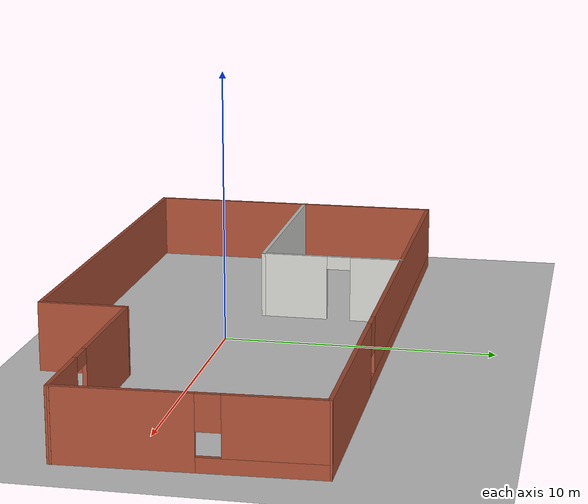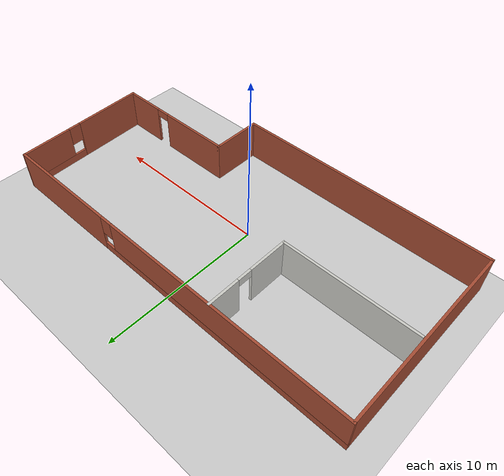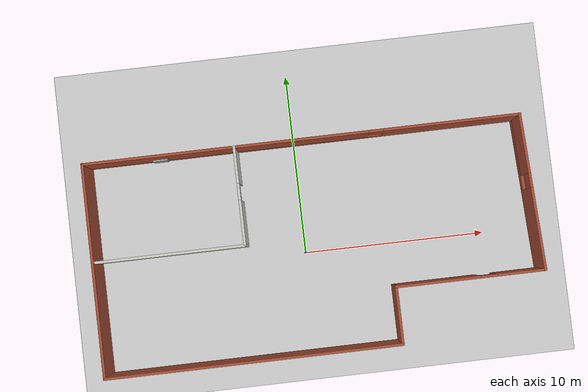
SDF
<sdf version="1.7">
 <world name="default">
  <light name="sun" type="directional">
   <pose>0 0 10 0 -0 0</pose>
   <diffuse>0.8 0.8 0.8 1</diffuse>
   <specular>0.2 0.2 0.2 1</specular>
   <attenuation>
    <range>1000</range>
    <constant>0.9</constant>
    <linear>0.01</linear>
    <quadratic>0.001</quadratic>
   </attenuation>
   <direction>-0.5 0.1 -0.9</direction>
   <spot><inner_angle>0</inner_angle><outer_angle>0</outer_angle><falloff>0</falloff></spot>
  </light>
  <model name="ground_plane">
   <static>1</static>
   <link name="link">
    <collision name="collision">
     <geometry><plane><normal>0 0 1</normal><size>100 100</size></plane></geometry>
     <surface>
      <contact><collide_bitmask>65535</collide_bitmask></contact>
      <friction><ode><mu>100</mu><mu2>50</mu2></ode></friction>
     </surface>
    </collision>
    <visual name="visual">
     <cast_shadows>0</cast_shadows>
     <geometry><plane><normal>0 0 1</normal><size>100 100</size></plane></geometry>
     <material>
      <script><uri>file://media/materials/scripts/gazebo.material</uri><name>Gazebo/Grey</name></script>
     </material>
    </visual>
   </link>
  </model>
  <gravity>0 0 -9.8</gravity>
  <magnetic_field>6e-06 2.3e-05 -4.2e-05</magnetic_field>
  <atmosphere type="adiabatic"/>
  <physics type="ode">
   <max_step_size>0.001</max_step_size>
   <real_time_factor>1</real_time_factor>
   <real_time_update_rate>1000</real_time_update_rate>
  </physics>
  <scene><ambient>0.4 0.4 0.4 1</ambient><background>0.7 0.7 0.7 1</background><shadows>1</shadows></scene>
  <spherical_coordinates>
   <surface_model>EARTH_WGS84</surface_model>
   <latitude_deg>0</latitude_deg>
   <longitude_deg>0</longitude_deg>
   <elevation>0</elevation>
   <heading_deg>0</heading_deg>
  </spherical_coordinates>
  <model name="Untitled">
   <pose>0.646994 0.330259 0 0 -0 0</pose>
   <link name="Wall_0">
    <pose>-0.176511 5.79849 0 0 -0 3.14159</pose>
    <visual name="Wall_0_Visual_0">
     <pose>-8.25449 0 1.25 0 -0 0</pose>
     <geometry><box><size>7.49102 0.15 2.5</size></box></geometry>
     <material>
      <script><uri>file://media/materials/scripts/gazebo.material</uri><name>Gazebo/Bricks</name></script>
      <ambient>1 1 1 1</ambient>
     </material>
     <meta><layer>0</layer></meta>
    </visual>
    <collision name="Wall_0_Collision_0">
     <geometry><box><size>7.49102 0.15 2.5</size></box></geometry>
     <pose>-8.25449 0 1.25 0 -0 0</pose>
    </collision>
    <visual name="Wall_0_Visual_1">
     <pose>3.74551 0 0.25 0 -0 0</pose>
     <geometry><box><size>16.509 0.15 0.5</size></box></geometry>
     <material>
      <script><uri>file://media/materials/scripts/gazebo.material</uri><name>Gazebo/Bricks</name></script>
      <ambient>1 1 1 1</ambient>
     </material>
     <meta><layer>0</layer></meta>
    </visual>
    <collision name="Wall_0_Collision_1">
     <geometry><box><size>16.509 0.15 0.5</size></box></geometry>
     <pose>3.74551 0 0.25 0 -0 0</pose>
    </collision>
    <visual name="Wall_0_Visual_2">
     <pose>4.14551 0 1.5 0 -0 0</pose>
     <geometry><box><size>15.709 0.15 2</size></box></geometry>
     <material>
      <script><uri>file://media/materials/scripts/gazebo.material</uri><name>Gazebo/Bricks</name></script>
      <ambient>1 1 1 1</ambient>
     </material>
     <meta><layer>0</layer></meta>
    </visual>
    <collision name="Wall_0_Collision_2">
     <geometry><box><size>15.709 0.15 2</size></box></geometry>
     <pose>4.14551 0 1.5 0 -0 0</pose>
    </collision>
    <visual name="Wall_0_Visual_3">
     <pose>-4.10898 0 1.9 0 -0 0</pose>
     <geometry><box><size>0.8 0.15 1.2</size></box></geometry>
     <material>
      <script><uri>file://media/materials/scripts/gazebo.material</uri><name>Gazebo/Bricks</name></script>
      <ambient>1 1 1 1</ambient>
     </material>
     <meta><layer>0</layer></meta>
    </visual>
    <collision name="Wall_0_Collision_3">
     <geometry><box><size>0.8 0.15 1.2</size></box></geometry>
     <pose>-4.10898 0 1.9 0 -0 0</pose>
    </collision>
   </link>
   <link name="Wall_1">
    <collision name="Wall_1_Collision">
     <geometry><box><size>11.75 0.15 2.5</size></box></geometry>
     <pose>0 0 1.25 0 -0 0</pose>
    </collision>
    <visual name="Wall_1_Visual">
     <pose>0 0 1.25 0 -0 0</pose>
     <geometry><box><size>11.75 0.15 2.5</size></box></geometry>
     <material>
      <script><uri>file://media/materials/scripts/gazebo.material</uri><name>Gazebo/Bricks</name></script>
      <ambient>1 1 1 1</ambient>
     </material>
     <meta><layer>0</layer></meta>
    </visual>
    <pose>-12.1015 -0.001511 0 0 -0 -1.5708</pose>
   </link>
   <link name="Wall_2">
    <collision name="Wall_2_Collision">
     <geometry><box><size>16.25 0.15 2.5</size></box></geometry>
     <pose>0 0 1.25 0 -0 0</pose>
    </collision>
    <visual name="Wall_2_Visual">
     <pose>0 0 1.25 0 -0 0</pose>
     <geometry><box><size>16.25 0.15 2.5</size></box></geometry>
     <material>
      <script><uri>file://media/materials/scripts/gazebo.material</uri><name>Gazebo/Bricks</name></script>
      <ambient>1 1 1 1</ambient>
     </material>
     <meta><layer>0</layer></meta>
    </visual>
    <pose>-4.05151 -5.80151 0 0 -0 0</pose>
   </link>
   <link name="Wall_3">
    <collision name="Wall_3_Collision">
     <geometry><box><size>3.25 0.15 2.5</size></box></geometry>
     <pose>0 0 1.25 0 -0 0</pose>
    </collision>
    <visual name="Wall_3_Visual">
     <pose>0 0 1.25 0 -0 0</pose>
     <geometry><box><size>3.25 0.15 2.5</size></box></geometry>
     <material>
      <script><uri>file://media/materials/scripts/gazebo.material</uri><name>Gazebo/Bricks</name></script>
      <ambient>1 1 1 1</ambient>
     </material>
     <meta><layer>0</layer></meta>
    </visual>
    <pose>3.99849 -4.25151 0 0 -0 1.5708</pose>
   </link>
   <link name="Wall_4">
    <pose>8.04849 -2.70151 0 0 -0 0</pose>
    <visual name="Wall_4_Visual_0">
     <pose>-1.78669 0 1.25 0 -0 0</pose>
     <geometry><box><size>4.67661 0.15 2.5</size></box></geometry>
     <material>
      <script><uri>file://media/materials/scripts/gazebo.material</uri><name>Gazebo/Bricks</name></script>
      <ambient>1 1 1 1</ambient>
     </material>
     <meta><layer>0</layer></meta>
    </visual>
    <collision name="Wall_4_Collision_0">
     <geometry><box><size>4.67661 0.15 2.5</size></box></geometry>
     <pose>-1.78669 0 1.25 0 -0 0</pose>
    </collision>
    <visual name="Wall_4_Visual_1">
     <pose>2.78831 0 1.25 0 -0 0</pose>
     <geometry><box><size>2.67339 0.15 2.5</size></box></geometry>
     <material>
      <script><uri>file://media/materials/scripts/gazebo.material</uri><name>Gazebo/Bricks</name></script>
      <ambient>1 1 1 1</ambient>
     </material>
     <meta><layer>0</layer></meta>
    </visual>
    <collision name="Wall_4_Collision_1">
     <geometry><box><size>2.67339 0.15 2.5</size></box></geometry>
     <pose>2.78831 0 1.25 0 -0 0</pose>
    </collision>
    <visual name="Wall_4_Visual_2">
     <pose>1.00161 0 2.25 0 -0 0</pose>
     <geometry><box><size>0.9 0.15 0.5</size></box></geometry>
     <material>
      <script><uri>file://media/materials/scripts/gazebo.material</uri><name>Gazebo/Bricks</name></script>
      <ambient>1 1 1 1</ambient>
     </material>
     <meta><layer>0</layer></meta>
    </visual>
    <collision name="Wall_4_Collision_2">
     <geometry><box><size>0.9 0.15 0.5</size></box></geometry>
     <pose>1.00161 0 2.25 0 -0 0</pose>
    </collision>
   </link>
   <link name="Wall_5">
    <pose>11.9235 1.54849 0 0 -0 1.61195</pose>
    <visual name="Wall_5_Visual_0">
     <pose>-2.05327 0 1.25 0 -0 0</pose>
     <geometry><box><size>4.55067 0.15 2.5</size></box></geometry>
     <material>
      <script><uri>file://media/materials/scripts/gazebo.material</uri><name>Gazebo/Bricks</name></script>
      <ambient>1 1 1 1</ambient>
     </material>
     <meta><layer>0</layer></meta>
    </visual>
    <collision name="Wall_5_Collision_0">
     <geometry><box><size>4.55067 0.15 2.5</size></box></geometry>
     <pose>-2.05327 0 1.25 0 -0 0</pose>
    </collision>
    <visual name="Wall_5_Visual_1">
     <pose>2.27533 0 0.25 0 -0 0</pose>
     <geometry><box><size>4.10654 0.15 0.5</size></box></geometry>
     <material>
      <script><uri>file://media/materials/scripts/gazebo.material</uri><name>Gazebo/Bricks</name></script>
      <ambient>1 1 1 1</ambient>
     </material>
     <meta><layer>0</layer></meta>
    </visual>
    <collision name="Wall_5_Collision_1">
     <geometry><box><size>4.10654 0.15 0.5</size></box></geometry>
     <pose>2.27533 0 0.25 0 -0 0</pose>
    </collision>
    <visual name="Wall_5_Visual_2">
     <pose>2.67533 0 1.5 0 -0 0</pose>
     <geometry><box><size>3.30653 0.15 2</size></box></geometry>
     <material>
      <script><uri>file://media/materials/scripts/gazebo.material</uri><name>Gazebo/Bricks</name></script>
      <ambient>1 1 1 1</ambient>
     </material>
     <meta><layer>0</layer></meta>
    </visual>
    <collision name="Wall_5_Collision_2">
     <geometry><box><size>3.30653 0.15 2</size></box></geometry>
     <pose>2.67533 0 1.5 0 -0 0</pose>
    </collision>
    <visual name="Wall_5_Visual_3">
     <pose>0.622066 0 1.9 0 -0 0</pose>
     <geometry><box><size>0.8 0.15 1.2</size></box></geometry>
     <material>
      <script><uri>file://media/materials/scripts/gazebo.material</uri><name>Gazebo/Bricks</name></script>
      <ambient>1 1 1 1</ambient>
     </material>
     <meta><layer>0</layer></meta>
    </visual>
    <collision name="Wall_5_Collision_3">
     <geometry><box><size>0.8 0.15 1.2</size></box></geometry>
     <pose>0.622066 0 1.9 0 -0 0</pose>
    </collision>
   </link>
   <link name="Wall_7">
    <pose>-3.83702 3.12349 0 0 -0 -1.5708</pose>
    <visual name="Wall_7_Visual_0">
     <pose>-1.72788 0 1.25 0 -0 0</pose>
     <geometry><box><size>2.04424 0.15 2.5</size></box></geometry>
     <material>
      <script><uri>file://media/materials/scripts/gazebo.material</uri><name>Gazebo/CeilingTiled</name></script>
      <ambient>1 1 1 1</ambient>
     </material>
     <meta><layer>0</layer></meta>
    </visual>
    <collision name="Wall_7_Collision_0">
     <geometry><box><size>2.04424 0.15 2.5</size></box></geometry>
     <pose>-1.72788 0 1.25 0 -0 0</pose>
    </collision>
    <visual name="Wall_7_Visual_1">
     <pose>1.47212 0 1.25 0 -0 0</pose>
     <geometry><box><size>2.55576 0.15 2.5</size></box></geometry>
     <material>
      <script><uri>file://media/materials/scripts/gazebo.material</uri><name>Gazebo/CeilingTiled</name></script>
      <ambient>1 1 1 1</ambient>
     </material>
     <meta><layer>0</layer></meta>
    </visual>
    <collision name="Wall_7_Collision_1">
     <geometry><box><size>2.55576 0.15 2.5</size></box></geometry>
     <pose>1.47212 0 1.25 0 -0 0</pose>
    </collision>
    <visual name="Wall_7_Visual_2">
     <pose>-0.255756 0 2.25 0 -0 0</pose>
     <geometry><box><size>0.9 0.15 0.5</size></box></geometry>
     <material>
      <script><uri>file://media/materials/scripts/gazebo.material</uri><name>Gazebo/CeilingTiled</name></script>
      <ambient>1 1 1 1</ambient>
     </material>
     <meta><layer>0</layer></meta>
    </visual>
    <collision name="Wall_7_Collision_2">
     <geometry><box><size>0.9 0.15 0.5</size></box></geometry>
     <pose>-0.255756 0 2.25 0 -0 0</pose>
    </collision>
   </link>
   <link name="Wall_8">
    <collision name="Wall_8_Collision">
     <geometry><box><size>8.25 0.15 2.5</size></box></geometry>
     <pose>0 0 1.25 0 -0 0</pose>
    </collision>
    <visual name="Wall_8_Visual">
     <pose>0 0 1.25 0 -0 0</pose>
     <geometry><box><size>8.25 0.15 2.5</size></box></geometry>
     <material>
      <script><uri>file://media/materials/scripts/gazebo.material</uri><name>Gazebo/CeilingTiled</name></script>
      <ambient>1 1 1 1</ambient>
     </material>
     <meta><layer>0</layer></meta>
    </visual>
    <pose>-7.88702 0.448489 0 0 -0 3.14159</pose>
   </link>
   <link name="Window_0">
    <collision name="Window_0_Collision">
     <geometry><box><size>0.8 0.17 0.8</size></box></geometry>
     <pose>0 0 0.4 0 -0 0</pose>
    </collision>
    <visual name="Window_0_Visual">
     <pose>0 0 0.4 0 -0 0</pose>
     <geometry><box><size>0.8 0.17 0.8</size></box></geometry>
     <material>
      <script><uri>file://media/materials/scripts/gazebo.material</uri><name>Gazebo/Grey</name></script>
     </material>
    </visual>
    <pose>-8.02417 5.70544 0.5 0 -0 0</pose>
   </link>
   <static>1</static>
  </model>
 </world>
</sdf>
